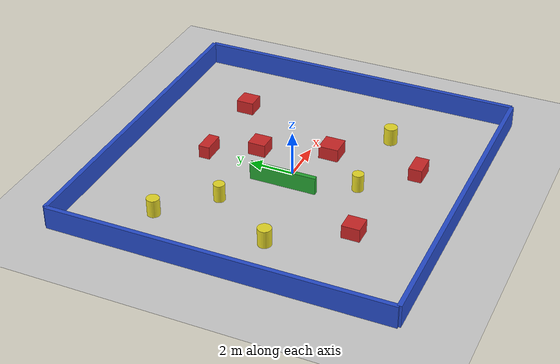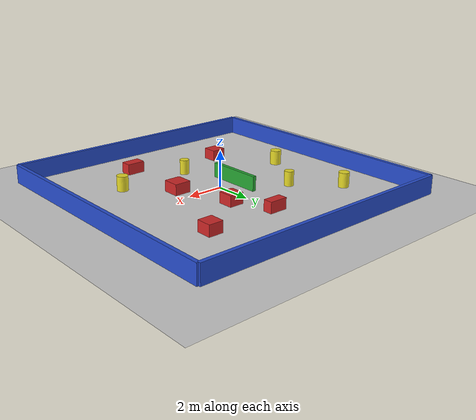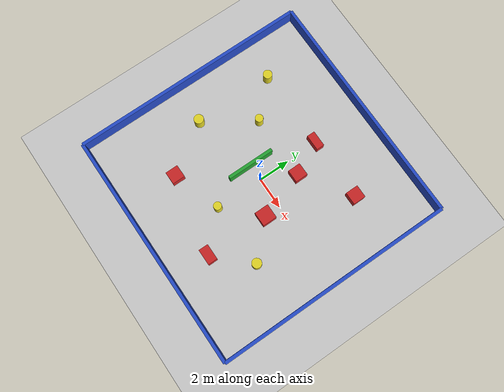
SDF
<?xml version="1.0" ?>
<sdf version="1.6">
  <world name="default">

    <!-- ===================== Svetlo + fyzika ===================== -->
    <light name="sun" type="directional">
      <cast_shadows>1</cast_shadows>
      <pose>0 0 10 0 -0 0</pose>
      <diffuse>0.8 0.8 0.8 1</diffuse>
      <specular>0.2 0.2 0.2 1</specular>
      <attenuation>
        <range>1000</range>
        <constant>0.9</constant>
        <linear>0.01</linear>
        <quadratic>0.001</quadratic>
      </attenuation>
      <direction>-0.5 0.1 -0.9</direction>
    </light>

    <gravity>0 0 -9.8</gravity>

    <physics type="ode">
      <max_step_size>0.01</max_step_size>
      <real_time_factor>1</real_time_factor>
      <real_time_update_rate>100</real_time_update_rate>
    </physics>

    <scene>
      <ambient>0.4 0.4 0.4 1</ambient>
      <background>0.7 0.7 0.7 1</background>
      <shadows>1</shadows>
    </scene>

    <!-- ===================== Podlaha ===================== -->
    <model name="ground_plane">
      <static>1</static>
      <link name="link">
        <collision name="collision">
          <geometry>
            <plane>
              <normal>0 0 1</normal>
              <size>50 50</size>
            </plane>
          </geometry>
          <surface>
            <friction>
              <ode>
                <mu>100</mu>
                <mu2>50</mu2>
              </ode>
            </friction>
          </surface>
        </collision>
        <visual name="visual">
          <cast_shadows>0</cast_shadows>
          <geometry>
            <plane>
              <normal>0 0 1</normal>
              <size>50 50</size>
            </plane>
          </geometry>
          <material>
            <script>
              <uri>file://media/materials/scripts/gazebo.material</uri>
              <name>Gazebo/Grey</name>
            </script>
          </material>
          <!-- Vizualizacia prejdenej trajektorie. Plugin kompenzuje
               scale ground_plane priamo v kode (world->local frame). -->
          <plugin name="path_trail" filename="libpath_trail_visual_plugin.so">
            <robot_name>robot</robot_name>
            <min_distance>0.05</min_distance>
            <line_z>0.05</line_z>
          </plugin>
        </visual>
      </link>
    </model>

    <!-- ===================== Hraničné steny (15×15 m) ===================== -->
    <model name="wall_north">
      <static>1</static>
      <pose>0 7.5 0.5 0 0 0</pose>
      <link name="link">
        <collision name="c"><geometry><box><size>15.0 0.2 1.0</size></box></geometry></collision>
        <visual    name="v"><geometry><box><size>15.0 0.2 1.0</size></box></geometry>
          <material><script><name>Gazebo/Blue</name></script></material>
        </visual>
      </link>
    </model>
    <model name="wall_south">
      <static>1</static>
      <pose>0 -7.5 0.5 0 0 0</pose>
      <link name="link">
        <collision name="c"><geometry><box><size>15.0 0.2 1.0</size></box></geometry></collision>
        <visual    name="v"><geometry><box><size>15.0 0.2 1.0</size></box></geometry>
          <material><script><name>Gazebo/Blue</name></script></material>
        </visual>
      </link>
    </model>
    <model name="wall_east">
      <static>1</static>
      <pose>7.5 0 0.5 0 0 0</pose>
      <link name="link">
        <collision name="c"><geometry><box><size>0.2 15.0 1.0</size></box></geometry></collision>
        <visual    name="v"><geometry><box><size>0.2 15.0 1.0</size></box></geometry>
          <material><script><name>Gazebo/Blue</name></script></material>
        </visual>
      </link>
    </model>
    <model name="wall_west">
      <static>1</static>
      <pose>-7.5 0 0.5 0 0 0</pose>
      <link name="link">
        <collision name="c"><geometry><box><size>0.2 15.0 1.0</size></box></geometry></collision>
        <visual    name="v"><geometry><box><size>0.2 15.0 1.0</size></box></geometry>
          <material><script><name>Gazebo/Blue</name></script></material>
        </visual>
      </link>
    </model>

    <!-- ===================== Statické prekážky ===================== -->
    <!-- box_3 a box_5 su presunute blizsie k startu robota (3,0) -->

    <model name="box_1">
      <static>1</static>
      <pose>4.0 4.0 0.3 0 0 0</pose>
      <link name="link">
        <collision name="c"><geometry><box><size>0.8 0.8 0.6</size></box></geometry></collision>
        <visual    name="v"><geometry><box><size>0.8 0.8 0.6</size></box></geometry>
          <material><script><name>Gazebo/Red</name></script></material>
        </visual>
      </link>
    </model>

    <model name="box_2">
      <static>1</static>
      <pose>0.0 4.0 0.3 0 0 0</pose>
      <link name="link">
        <collision name="c"><geometry><box><size>1.0 0.5 0.6</size></box></geometry></collision>
        <visual    name="v"><geometry><box><size>1.0 0.5 0.6</size></box></geometry>
          <material><script><name>Gazebo/Red</name></script></material>
        </visual>
      </link>
    </model>

    <model name="box_3">
      <static>1</static>
      <pose>2.0 -1.0 0.3 0 0 0</pose>
      <link name="link">
        <collision name="c"><geometry><box><size>0.9 0.9 0.6</size></box></geometry></collision>
        <visual    name="v"><geometry><box><size>0.9 0.9 0.6</size></box></geometry>
          <material><script><name>Gazebo/Red</name></script></material>
        </visual>
      </link>
    </model>

    <model name="box_4">
      <static>1</static>
      <pose>-3.0 -4.0 0.3 0 0 0</pose>
      <link name="link">
        <collision name="c"><geometry><box><size>0.8 0.8 0.6</size></box></geometry></collision>
        <visual    name="v"><geometry><box><size>0.8 0.8 0.6</size></box></geometry>
          <material><script><name>Gazebo/Red</name></script></material>
        </visual>
      </link>
    </model>

    <model name="box_5">
      <static>1</static>
      <pose>1.0 2.0 0.3 0 0 0</pose>
      <link name="link">
        <collision name="c"><geometry><box><size>0.8 0.8 0.6</size></box></geometry></collision>
        <visual    name="v"><geometry><box><size>0.8 0.8 0.6</size></box></geometry>
          <material><script><name>Gazebo/Red</name></script></material>
        </visual>
      </link>
    </model>

    <model name="box_6">
      <static>1</static>
      <pose>2.0 -5.0 0.3 0 0 0</pose>
      <link name="link">
        <collision name="c"><geometry><box><size>1.0 0.6 0.6</size></box></geometry></collision>
        <visual    name="v"><geometry><box><size>1.0 0.6 0.6</size></box></geometry>
          <material><script><name>Gazebo/Red</name></script></material>
        </visual>
      </link>
    </model>

    <model name="pillar_1">
      <static>1</static>
      <pose>4.0 -3.0 0.4 0 0 0</pose>
      <link name="link">
        <collision name="c"><geometry><cylinder><radius>0.30</radius><length>0.8</length></cylinder></geometry></collision>
        <visual    name="v"><geometry><cylinder><radius>0.30</radius><length>0.8</length></cylinder></geometry>
          <material><script><name>Gazebo/Yellow</name></script></material>
        </visual>
      </link>
    </model>

    <model name="pillar_2">
      <static>1</static>
      <pose>0.0 -3.0 0.4 0 0 0</pose>
      <link name="link">
        <collision name="c"><geometry><cylinder><radius>0.25</radius><length>0.8</length></cylinder></geometry></collision>
        <visual    name="v"><geometry><cylinder><radius>0.25</radius><length>0.8</length></cylinder></geometry>
          <material><script><name>Gazebo/Yellow</name></script></material>
        </visual>
      </link>
    </model>

    <model name="pillar_3">
      <static>1</static>
      <pose>-5.0 -1.0 0.4 0 0 0</pose>
      <link name="link">
        <collision name="c"><geometry><cylinder><radius>0.30</radius><length>0.8</length></cylinder></geometry></collision>
        <visual    name="v"><geometry><cylinder><radius>0.30</radius><length>0.8</length></cylinder></geometry>
          <material><script><name>Gazebo/Yellow</name></script></material>
        </visual>
      </link>
    </model>

    <model name="pillar_4">
      <static>1</static>
      <pose>-5.0 4.0 0.4 0 0 0</pose>
      <link name="link">
        <collision name="c"><geometry><cylinder><radius>0.28</radius><length>0.8</length></cylinder></geometry></collision>
        <visual    name="v"><geometry><cylinder><radius>0.28</radius><length>0.8</length></cylinder></geometry>
          <material><script><name>Gazebo/Yellow</name></script></material>
        </visual>
      </link>
    </model>

    <model name="pillar_5">
      <static>1</static>
      <pose>-3.0 2.0 0.4 0 0 0</pose>
      <link name="link">
        <collision name="c"><geometry><cylinder><radius>0.25</radius><length>0.8</length></cylinder></geometry></collision>
        <visual    name="v"><geometry><cylinder><radius>0.25</radius><length>0.8</length></cylinder></geometry>
          <material><script><name>Gazebo/Yellow</name></script></material>
        </visual>
      </link>
    </model>

    <!-- Vnútorná stena (topologická voľba trasy) -->
    <model name="inner_wall">
      <static>1</static>
      <pose>-1.0 0.0 0.4 0 0 0</pose>
      <link name="link">
        <collision name="c"><geometry><box><size>0.2 3.0 0.8</size></box></geometry></collision>
        <visual    name="v"><geometry><box><size>0.2 3.0 0.8</size></box></geometry>
          <material><script><name>Gazebo/Green</name></script></material>
        </visual>
      </link>
    </model>

    <!-- ===================== GUI (kamera pohľad) ===================== -->
    <gui fullscreen="0">
      <camera name="user_camera">
        <pose>0 -18 18 0 0.9 1.57</pose>
        <view_controller>orbit</view_controller>
      </camera>
    </gui>

  </world>
</sdf>
